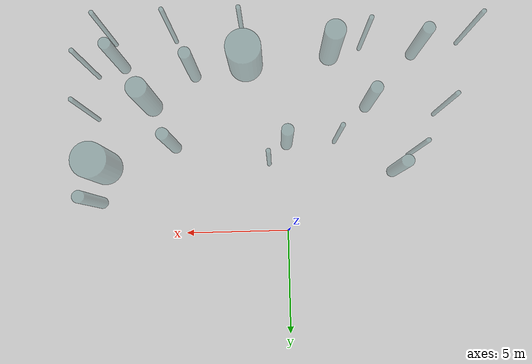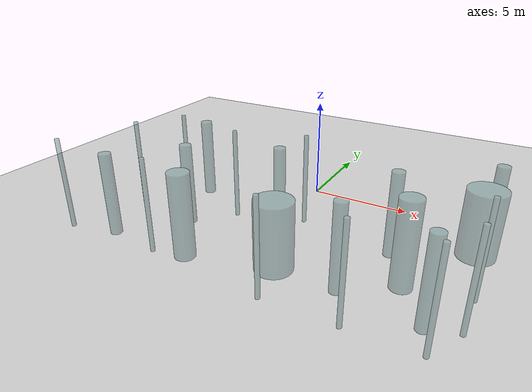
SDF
<sdf version="1.6">
 <world name="default">
  <model name="ground_plane">
   <static>1</static>
   <link name="link">
    <collision name="collision">
     <geometry><plane><normal>0 0 1</normal><size>100 100</size></plane></geometry>
     <surface><friction><ode><mu>100</mu><mu2>50</mu2></ode></friction></surface>
    </collision>
    <visual name="visual">
     <cast_shadows>0</cast_shadows>
     <geometry><plane><normal>0 0 1</normal><size>100 100</size></plane></geometry>
     <material>
      <script><uri>file://media/materials/scripts/gazebo.material</uri><name>Gazebo/Grey</name></script>
     </material>
    </visual>
   </link>
  </model>
  <model name="cylinders">
   <link name="link_clone_10">
    <inertial>
     <mass>1</mass>
     <inertia><ixx>0.145833</ixx><ixy>0</ixy><ixz>0</ixz><iyy>0.145833</iyy><iyz>0</iyz><izz>0.125</izz></inertia>
    </inertial>
    <pose>6.10285 -3.45416 1e-06 -0 -0 -0.001272</pose>
    <visual name="visual">
     <geometry><cylinder><radius>0.280725</radius><length>4</length></cylinder></geometry>
     <material>
      <script><name>Gazebo/Grey</name><uri>file://media/materials/scripts/gazebo.material</uri></script>
      <ambient>0.1 0.1 0.9 0.6</ambient>
      <shader type="vertex"><normal_map>__default__</normal_map></shader>
      <diffuse>0.3 0.5 0.5 0.4</diffuse>
      <specular>0.01 0.01 0.01 1</specular>
      <emissive>0 0 0 1</emissive>
      <lighting>1</lighting>
     </material>
    </visual>
    <collision name="collision">
     <geometry><cylinder><radius>0.280725</radius><length>4</length></cylinder></geometry>
     <surface>
      <friction>
       <ode><mu>1</mu><mu2>1</mu2><fdir1>0 0 0</fdir1><slip1>0</slip1><slip2>0</slip2></ode>
       <torsional>
        <coefficient>1</coefficient>
        <patch_radius>0</patch_radius>
        <surface_radius>0</surface_radius>
        <use_patch_radius>1</use_patch_radius>
        <ode><slip>0</slip></ode>
       </torsional>
      </friction>
      <bounce><restitution_coefficient>0</restitution_coefficient><threshold>1e+06</threshold></bounce>
      <contact>
       <collide_without_contact>0</collide_without_contact>
       <collide_without_contact_bitmask>1</collide_without_contact_bitmask>
       <collide_bitmask>1</collide_bitmask>
       <ode>
        <soft_cfm>0</soft_cfm>
        <soft_erp>0.2</soft_erp>
        <kp>1e+13</kp>
        <kd>1</kd>
        <max_vel>0.01</max_vel>
        <min_depth>0</min_depth>
       </ode>
       <bullet>
        <split_impulse>1</split_impulse>
        <split_impulse_penetration_threshold>-0.01</split_impulse_penetration_threshold>
        <soft_cfm>0</soft_cfm>
        <soft_erp>0.2</soft_erp>
        <kp>1e+13</kp>
        <kd>1</kd>
       </bullet>
      </contact>
     </surface>
    </collision>
   </link>
   <link name="link_clone_11">
    <inertial>
     <mass>1</mass>
     <inertia><ixx>0.145833</ixx><ixy>0</ixy><ixz>0</ixz><iyy>0.145833</iyy><iyz>0</iyz><izz>0.125</izz></inertia>
    </inertial>
    <pose>8.62363 -7.57073 2e-06 -0 -0 -0.001272</pose>
    <visual name="visual">
     <geometry><cylinder><radius>0.280725</radius><length>4</length></cylinder></geometry>
     <material>
      <script><name>Gazebo/Grey</name><uri>file://media/materials/scripts/gazebo.material</uri></script>
      <ambient>0.1 0.1 0.9 0.6</ambient>
      <shader type="vertex"><normal_map>__default__</normal_map></shader>
      <diffuse>0.3 0.5 0.5 0.4</diffuse>
      <specular>0.01 0.01 0.01 1</specular>
      <emissive>0 0 0 1</emissive>
      <lighting>1</lighting>
     </material>
    </visual>
    <collision name="collision">
     <geometry><cylinder><radius>0.280725</radius><length>4</length></cylinder></geometry>
     <surface>
      <friction>
       <ode><mu>1</mu><mu2>1</mu2><fdir1>0 0 0</fdir1><slip1>0</slip1><slip2>0</slip2></ode>
       <torsional>
        <coefficient>1</coefficient>
        <patch_radius>0</patch_radius>
        <surface_radius>0</surface_radius>
        <use_patch_radius>1</use_patch_radius>
        <ode><slip>0</slip></ode>
       </torsional>
      </friction>
      <bounce><restitution_coefficient>0</restitution_coefficient><threshold>1e+06</threshold></bounce>
      <contact>
       <collide_without_contact>0</collide_without_contact>
       <collide_without_contact_bitmask>1</collide_without_contact_bitmask>
       <collide_bitmask>1</collide_bitmask>
       <ode>
        <soft_cfm>0</soft_cfm>
        <soft_erp>0.2</soft_erp>
        <kp>1e+13</kp>
        <kd>1</kd>
        <max_vel>0.01</max_vel>
        <min_depth>0</min_depth>
       </ode>
       <bullet>
        <split_impulse>1</split_impulse>
        <split_impulse_penetration_threshold>-0.01</split_impulse_penetration_threshold>
        <soft_cfm>0</soft_cfm>
        <soft_erp>0.2</soft_erp>
        <kp>1e+13</kp>
        <kd>1</kd>
       </bullet>
      </contact>
     </surface>
    </collision>
   </link>
   <link name="link_clone_11_clone">
    <inertial>
     <mass>1</mass>
     <inertia><ixx>0.145833</ixx><ixy>0</ixy><ixz>0</ixz><iyy>0.145833</iyy><iyz>0</iyz><izz>0.125</izz></inertia>
    </inertial>
    <pose>-5.81358 -7.92747 1e-06 -0 -0 -0.002544</pose>
    <visual name="visual">
     <geometry><cylinder><radius>0.280725</radius><length>4</length></cylinder></geometry>
     <material>
      <script><name>Gazebo/Grey</name><uri>file://media/materials/scripts/gazebo.material</uri></script>
      <ambient>0.1 0.1 0.9 0.6</ambient>
      <shader type="vertex"><normal_map>__default__</normal_map></shader>
      <diffuse>0.3 0.5 0.5 0.4</diffuse>
      <specular>0.01 0.01 0.01 1</specular>
      <emissive>0 0 0 1</emissive>
      <lighting>1</lighting>
     </material>
    </visual>
    <collision name="collision">
     <geometry><cylinder><radius>0.280725</radius><length>4</length></cylinder></geometry>
     <surface>
      <friction>
       <ode><mu>1</mu><mu2>1</mu2><fdir1>0 0 0</fdir1><slip1>0</slip1><slip2>0</slip2></ode>
       <torsional>
        <coefficient>1</coefficient>
        <patch_radius>0</patch_radius>
        <surface_radius>0</surface_radius>
        <use_patch_radius>1</use_patch_radius>
        <ode><slip>0</slip></ode>
       </torsional>
      </friction>
      <bounce><restitution_coefficient>0</restitution_coefficient><threshold>1e+06</threshold></bounce>
      <contact>
       <collide_without_contact>0</collide_without_contact>
       <collide_without_contact_bitmask>1</collide_without_contact_bitmask>
       <collide_bitmask>1</collide_bitmask>
       <ode>
        <soft_cfm>0</soft_cfm>
        <soft_erp>0.2</soft_erp>
        <kp>1e+13</kp>
        <kd>1</kd>
        <max_vel>0.01</max_vel>
        <min_depth>0</min_depth>
       </ode>
       <bullet>
        <split_impulse>1</split_impulse>
        <split_impulse_penetration_threshold>-0.01</split_impulse_penetration_threshold>
        <soft_cfm>0</soft_cfm>
        <soft_erp>0.2</soft_erp>
        <kp>1e+13</kp>
        <kd>1</kd>
       </bullet>
      </contact>
     </surface>
    </collision>
   </link>
   <link name="link_clone_11_clone_0">
    <inertial>
     <mass>2.96402</mass>
     <inertia><ixx>4.12512</ixx><ixy>0</ixy><ixz>0</ixz><iyy>4.12512</iyy><iyz>0</iyz><izz>0.346176</izz></inertia>
    </inertial>
    <pose>-1.65639 -7.9506 2e-06 -0 -0 -0.002544</pose>
    <visual name="visual">
     <geometry><cylinder><radius>0.483307</radius><length>4</length></cylinder></geometry>
     <material>
      <script><name>Gazebo/Grey</name><uri>file://media/materials/scripts/gazebo.material</uri></script>
      <ambient>0.1 0.1 0.9 0.6</ambient>
      <shader type="vertex"><normal_map>__default__</normal_map></shader>
      <diffuse>0.3 0.5 0.5 0.4</diffuse>
      <specular>0.01 0.01 0.01 1</specular>
      <emissive>0 0 0 1</emissive>
      <lighting>1</lighting>
     </material>
    </visual>
    <collision name="collision">
     <geometry><cylinder><radius>0.483307</radius><length>4</length></cylinder></geometry>
     <surface>
      <friction>
       <ode><mu>1</mu><mu2>1</mu2><fdir1>0 0 0</fdir1><slip1>0</slip1><slip2>0</slip2></ode>
       <torsional>
        <coefficient>1</coefficient>
        <patch_radius>0</patch_radius>
        <surface_radius>0</surface_radius>
        <use_patch_radius>1</use_patch_radius>
        <ode><slip>0</slip></ode>
       </torsional>
      </friction>
      <bounce><restitution_coefficient>0</restitution_coefficient><threshold>1e+06</threshold></bounce>
      <contact>
       <collide_without_contact>0</collide_without_contact>
       <collide_without_contact_bitmask>1</collide_without_contact_bitmask>
       <collide_bitmask>1</collide_bitmask>
       <ode>
        <soft_cfm>0</soft_cfm>
        <soft_erp>0.2</soft_erp>
        <kp>1e+13</kp>
        <kd>1</kd>
        <max_vel>0.01</max_vel>
        <min_depth>0</min_depth>
       </ode>
       <bullet>
        <split_impulse>1</split_impulse>
        <split_impulse_penetration_threshold>-0.01</split_impulse_penetration_threshold>
        <soft_cfm>0</soft_cfm>
        <soft_erp>0.2</soft_erp>
        <kp>1e+13</kp>
        <kd>1</kd>
       </bullet>
      </contact>
     </surface>
    </collision>
   </link>
   <link name="link_clone_11_clone_0_clone_2">
    <inertial>
     <mass>2.96402</mass>
     <inertia><ixx>4.12512</ixx><ixy>0</ixy><ixz>0</ixz><iyy>4.12512</iyy><iyz>0</iyz><izz>0.346176</izz></inertia>
    </inertial>
    <pose>7.2329 -5.55542 3e-06 -0 -0 -0.003816</pose>
    <visual name="visual">
     <geometry><cylinder><radius>0.483307</radius><length>4</length></cylinder></geometry>
     <material>
      <script><name>Gazebo/Grey</name><uri>file://media/materials/scripts/gazebo.material</uri></script>
      <ambient>0.1 0.1 0.9 0.6</ambient>
      <shader type="vertex"><normal_map>__default__</normal_map></shader>
      <diffuse>0.3 0.5 0.5 0.4</diffuse>
      <specular>0.01 0.01 0.01 1</specular>
      <emissive>0 0 0 1</emissive>
      <lighting>1</lighting>
     </material>
    </visual>
    <collision name="collision">
     <geometry><cylinder><radius>0.483307</radius><length>4</length></cylinder></geometry>
     <surface>
      <friction>
       <ode><mu>1</mu><mu2>1</mu2><fdir1>0 0 0</fdir1><slip1>0</slip1><slip2>0</slip2></ode>
       <torsional>
        <coefficient>1</coefficient>
        <patch_radius>0</patch_radius>
        <surface_radius>0</surface_radius>
        <use_patch_radius>1</use_patch_radius>
        <ode><slip>0</slip></ode>
       </torsional>
      </friction>
      <bounce><restitution_coefficient>0</restitution_coefficient><threshold>1e+06</threshold></bounce>
      <contact>
       <collide_without_contact>0</collide_without_contact>
       <collide_without_contact_bitmask>1</collide_without_contact_bitmask>
       <collide_bitmask>1</collide_bitmask>
       <ode>
        <soft_cfm>0</soft_cfm>
        <soft_erp>0.2</soft_erp>
        <kp>1e+13</kp>
        <kd>1</kd>
        <max_vel>0.01</max_vel>
        <min_depth>0</min_depth>
       </ode>
       <bullet>
        <split_impulse>1</split_impulse>
        <split_impulse_penetration_threshold>-0.01</split_impulse_penetration_threshold>
        <soft_cfm>0</soft_cfm>
        <soft_erp>0.2</soft_erp>
        <kp>1e+13</kp>
        <kd>1</kd>
       </bullet>
      </contact>
     </surface>
    </collision>
   </link>
   <link name="link_clone_11_clone_1">
    <inertial>
     <mass>1</mass>
     <inertia><ixx>0.145833</ixx><ixy>0</ixy><ixz>0</ixz><iyy>0.145833</iyy><iyz>0</iyz><izz>0.125</izz></inertia>
    </inertial>
    <pose>5.08484 -7.05522 3e-06 -0 -0 -0.002544</pose>
    <visual name="visual">
     <geometry><cylinder><radius>0.280725</radius><length>4</length></cylinder></geometry>
     <material>
      <script><name>Gazebo/Grey</name><uri>file://media/materials/scripts/gazebo.material</uri></script>
      <ambient>0.1 0.1 0.9 0.6</ambient>
      <shader type="vertex"><normal_map>__default__</normal_map></shader>
      <diffuse>0.3 0.5 0.5 0.4</diffuse>
      <specular>0.01 0.01 0.01 1</specular>
      <emissive>0 0 0 1</emissive>
      <lighting>1</lighting>
     </material>
    </visual>
    <collision name="collision">
     <geometry><cylinder><radius>0.280725</radius><length>4</length></cylinder></geometry>
     <surface>
      <friction>
       <ode><mu>1</mu><mu2>1</mu2><fdir1>0 0 0</fdir1><slip1>0</slip1><slip2>0</slip2></ode>
       <torsional>
        <coefficient>1</coefficient>
        <patch_radius>0</patch_radius>
        <surface_radius>0</surface_radius>
        <use_patch_radius>1</use_patch_radius>
        <ode><slip>0</slip></ode>
       </torsional>
      </friction>
      <bounce><restitution_coefficient>0</restitution_coefficient><threshold>1e+06</threshold></bounce>
      <contact>
       <collide_without_contact>0</collide_without_contact>
       <collide_without_contact_bitmask>1</collide_without_contact_bitmask>
       <collide_bitmask>1</collide_bitmask>
       <ode>
        <soft_cfm>0</soft_cfm>
        <soft_erp>0.2</soft_erp>
        <kp>1e+13</kp>
        <kd>1</kd>
        <max_vel>0.01</max_vel>
        <min_depth>0</min_depth>
       </ode>
       <bullet>
        <split_impulse>1</split_impulse>
        <split_impulse_penetration_threshold>-0.01</split_impulse_penetration_threshold>
        <soft_cfm>0</soft_cfm>
        <soft_erp>0.2</soft_erp>
        <kp>1e+13</kp>
        <kd>1</kd>
       </bullet>
      </contact>
     </surface>
    </collision>
   </link>
   <link name="link_clone_11_clone_1_clone_0">
    <inertial>
     <mass>0.168862</mass>
     <inertia>
      <ixx>0.33323</ixx>
      <ixy>0</ixy>
      <ixz>0</ixz>
      <iyy>0.33323</iyy>
      <iyz>0</iyz>
      <izz>0.000924096</izz>
     </inertia>
    </inertial>
    <pose>9.95161 -4.98191 5e-06 -0 -0 -0.003816</pose>
    <visual name="visual">
     <geometry><cylinder><radius>0.104618</radius><length>4.8629</length></cylinder></geometry>
     <material>
      <script><name>Gazebo/Grey</name><uri>file://media/materials/scripts/gazebo.material</uri></script>
      <ambient>0.1 0.1 0.9 0.6</ambient>
      <shader type="vertex"><normal_map>__default__</normal_map></shader>
      <diffuse>0.3 0.5 0.5 0.4</diffuse>
      <specular>0.01 0.01 0.01 1</specular>
      <emissive>0 0 0 1</emissive>
      <lighting>1</lighting>
     </material>
    </visual>
    <collision name="collision">
     <geometry><cylinder><radius>0.104618</radius><length>4.8629</length></cylinder></geometry>
     <surface>
      <friction>
       <ode><mu>1</mu><mu2>1</mu2><fdir1>0 0 0</fdir1><slip1>0</slip1><slip2>0</slip2></ode>
       <torsional>
        <coefficient>1</coefficient>
        <patch_radius>0</patch_radius>
        <surface_radius>0</surface_radius>
        <use_patch_radius>1</use_patch_radius>
        <ode><slip>0</slip></ode>
       </torsional>
      </friction>
      <bounce><restitution_coefficient>0</restitution_coefficient><threshold>1e+06</threshold></bounce>
      <contact>
       <collide_without_contact>0</collide_without_contact>
       <collide_without_contact_bitmask>1</collide_without_contact_bitmask>
       <collide_bitmask>1</collide_bitmask>
       <ode>
        <soft_cfm>0</soft_cfm>
        <soft_erp>0.2</soft_erp>
        <kp>1e+13</kp>
        <kd>1</kd>
        <max_vel>0.01</max_vel>
        <min_depth>0</min_depth>
       </ode>
       <bullet>
        <split_impulse>1</split_impulse>
        <split_impulse_penetration_threshold>-0.01</split_impulse_penetration_threshold>
        <soft_cfm>0</soft_cfm>
        <soft_erp>0.2</soft_erp>
        <kp>1e+13</kp>
        <kd>1</kd>
       </bullet>
      </contact>
     </surface>
    </collision>
   </link>
   <link name="link_clone_11_clone_1_clone_1">
    <inertial>
     <mass>0.168862</mass>
     <inertia>
      <ixx>0.33323</ixx>
      <ixy>0</ixy>
      <ixz>0</ixz>
      <iyy>0.33323</iyy>
      <iyz>0</iyz>
      <izz>0.000924096</izz>
     </inertia>
    </inertial>
    <pose>1.46769 -2.52946 3e-06 -0 -0 -0.003816</pose>
    <visual name="visual">
     <geometry><cylinder><radius>0.104618</radius><length>4.8629</length></cylinder></geometry>
     <material>
      <script><name>Gazebo/Grey</name><uri>file://media/materials/scripts/gazebo.material</uri></script>
      <ambient>0.1 0.1 0.9 0.6</ambient>
      <shader type="vertex"><normal_map>__default__</normal_map></shader>
      <diffuse>0.3 0.5 0.5 0.4</diffuse>
      <specular>0.01 0.01 0.01 1</specular>
      <emissive>0 0 0 1</emissive>
      <lighting>1</lighting>
     </material>
    </visual>
    <collision name="collision">
     <geometry><cylinder><radius>0.104618</radius><length>4.8629</length></cylinder></geometry>
     <surface>
      <friction>
       <ode><mu>1</mu><mu2>1</mu2><fdir1>0 0 0</fdir1><slip1>0</slip1><slip2>0</slip2></ode>
       <torsional>
        <coefficient>1</coefficient>
        <patch_radius>0</patch_radius>
        <surface_radius>0</surface_radius>
        <use_patch_radius>1</use_patch_radius>
        <ode><slip>0</slip></ode>
       </torsional>
      </friction>
      <bounce><restitution_coefficient>0</restitution_coefficient><threshold>1e+06</threshold></bounce>
      <contact>
       <collide_without_contact>0</collide_without_contact>
       <collide_without_contact_bitmask>1</collide_without_contact_bitmask>
       <collide_bitmask>1</collide_bitmask>
       <ode>
        <soft_cfm>0</soft_cfm>
        <soft_erp>0.2</soft_erp>
        <kp>1e+13</kp>
        <kd>1</kd>
        <max_vel>0.01</max_vel>
        <min_depth>0</min_depth>
       </ode>
       <bullet>
        <split_impulse>1</split_impulse>
        <split_impulse_penetration_threshold>-0.01</split_impulse_penetration_threshold>
        <soft_cfm>0</soft_cfm>
        <soft_erp>0.2</soft_erp>
        <kp>1e+13</kp>
        <kd>1</kd>
       </bullet>
      </contact>
     </surface>
    </collision>
   </link>
   <link name="link_clone_11_clone_1_clone_10">
    <inertial>
     <mass>0.168862</mass>
     <inertia>
      <ixx>0.33323</ixx>
      <ixy>0</ixy>
      <ixz>0</ixz>
      <iyy>0.33323</iyy>
      <iyz>0</iyz>
      <izz>0.000924096</izz>
     </inertia>
    </inertial>
    <pose>-1.79045 -3.5684 3e-06 -0 -0 -0.003816</pose>
    <visual name="visual">
     <geometry><cylinder><radius>0.104618</radius><length>4.8629</length></cylinder></geometry>
     <material>
      <script><name>Gazebo/Grey</name><uri>file://media/materials/scripts/gazebo.material</uri></script>
      <ambient>0.1 0.1 0.9 0.6</ambient>
      <shader type="vertex"><normal_map>__default__</normal_map></shader>
      <diffuse>0.3 0.5 0.5 0.4</diffuse>
      <specular>0.01 0.01 0.01 1</specular>
      <emissive>0 0 0 1</emissive>
      <lighting>1</lighting>
     </material>
    </visual>
    <collision name="collision">
     <geometry><cylinder><radius>0.104618</radius><length>4.8629</length></cylinder></geometry>
     <surface>
      <friction>
       <ode><mu>1</mu><mu2>1</mu2><fdir1>0 0 0</fdir1><slip1>0</slip1><slip2>0</slip2></ode>
       <torsional>
        <coefficient>1</coefficient>
        <patch_radius>0</patch_radius>
        <surface_radius>0</surface_radius>
        <use_patch_radius>1</use_patch_radius>
        <ode><slip>0</slip></ode>
       </torsional>
      </friction>
      <bounce><restitution_coefficient>0</restitution_coefficient><threshold>1e+06</threshold></bounce>
      <contact>
       <collide_without_contact>0</collide_without_contact>
       <collide_without_contact_bitmask>1</collide_without_contact_bitmask>
       <collide_bitmask>1</collide_bitmask>
       <ode>
        <soft_cfm>0</soft_cfm>
        <soft_erp>0.2</soft_erp>
        <kp>1e+13</kp>
        <kd>1</kd>
        <max_vel>0.01</max_vel>
        <min_depth>0</min_depth>
       </ode>
       <bullet>
        <split_impulse>1</split_impulse>
        <split_impulse_penetration_threshold>-0.01</split_impulse_penetration_threshold>
        <soft_cfm>0</soft_cfm>
        <soft_erp>0.2</soft_erp>
        <kp>1e+13</kp>
        <kd>1</kd>
       </bullet>
      </contact>
     </surface>
    </collision>
   </link>
   <link name="link_clone_11_clone_1_clone_4_clone">
    <inertial>
     <mass>0.168862</mass>
     <inertia>
      <ixx>0.33323</ixx>
      <ixy>0</ixy>
      <ixz>0</ixz>
      <iyy>0.33323</iyy>
      <iyz>0</iyz>
      <izz>0.000924096</izz>
     </inertia>
    </inertial>
    <pose>-8.13414 -8.46395 3e-06 -0 -0 -0.005088</pose>
    <visual name="visual">
     <geometry><cylinder><radius>0.104618</radius><length>4.8629</length></cylinder></geometry>
     <material>
      <script><name>Gazebo/Grey</name><uri>file://media/materials/scripts/gazebo.material</uri></script>
      <ambient>0.1 0.1 0.9 0.6</ambient>
      <shader type="vertex"><normal_map>__default__</normal_map></shader>
      <diffuse>0.3 0.5 0.5 0.4</diffuse>
      <specular>0.01 0.01 0.01 1</specular>
      <emissive>0 0 0 1</emissive>
      <lighting>1</lighting>
     </material>
    </visual>
    <collision name="collision">
     <geometry><cylinder><radius>0.104618</radius><length>4.8629</length></cylinder></geometry>
     <surface>
      <friction>
       <ode><mu>1</mu><mu2>1</mu2><fdir1>0 0 0</fdir1><slip1>0</slip1><slip2>0</slip2></ode>
       <torsional>
        <coefficient>1</coefficient>
        <patch_radius>0</patch_radius>
        <surface_radius>0</surface_radius>
        <use_patch_radius>1</use_patch_radius>
        <ode><slip>0</slip></ode>
       </torsional>
      </friction>
      <bounce><restitution_coefficient>0</restitution_coefficient><threshold>1e+06</threshold></bounce>
      <contact>
       <collide_without_contact>0</collide_without_contact>
       <collide_without_contact_bitmask>1</collide_without_contact_bitmask>
       <collide_bitmask>1</collide_bitmask>
       <ode>
        <soft_cfm>0</soft_cfm>
        <soft_erp>0.2</soft_erp>
        <kp>1e+13</kp>
        <kd>1</kd>
        <max_vel>0.01</max_vel>
        <min_depth>0</min_depth>
       </ode>
       <bullet>
        <split_impulse>1</split_impulse>
        <split_impulse_penetration_threshold>-0.01</split_impulse_penetration_threshold>
        <soft_cfm>0</soft_cfm>
        <soft_erp>0.2</soft_erp>
        <kp>1e+13</kp>
        <kd>1</kd>
       </bullet>
      </contact>
     </surface>
    </collision>
   </link>
   <link name="link_clone_11_clone_1_clone_4_clone_0">
    <inertial>
     <mass>0.168862</mass>
     <inertia>
      <ixx>0.33323</ixx>
      <ixy>0</ixy>
      <ixz>0</ixz>
      <iyy>0.33323</iyy>
      <iyz>0</iyz>
      <izz>0.000924096</izz>
     </inertia>
    </inertial>
    <pose>-6.81628 -4.84472 3e-06 -0 -0 -0.005088</pose>
    <visual name="visual">
     <geometry><cylinder><radius>0.104618</radius><length>4.8629</length></cylinder></geometry>
     <material>
      <script><name>Gazebo/Grey</name><uri>file://media/materials/scripts/gazebo.material</uri></script>
      <ambient>0.1 0.1 0.9 0.6</ambient>
      <shader type="vertex"><normal_map>__default__</normal_map></shader>
      <diffuse>0.3 0.5 0.5 0.4</diffuse>
      <specular>0.01 0.01 0.01 1</specular>
      <emissive>0 0 0 1</emissive>
      <lighting>1</lighting>
     </material>
    </visual>
    <collision name="collision">
     <geometry><cylinder><radius>0.104618</radius><length>4.8629</length></cylinder></geometry>
     <surface>
      <friction>
       <ode><mu>1</mu><mu2>1</mu2><fdir1>0 0 0</fdir1><slip1>0</slip1><slip2>0</slip2></ode>
       <torsional>
        <coefficient>1</coefficient>
        <patch_radius>0</patch_radius>
        <surface_radius>0</surface_radius>
        <use_patch_radius>1</use_patch_radius>
        <ode><slip>0</slip></ode>
       </torsional>
      </friction>
      <bounce><restitution_coefficient>0</restitution_coefficient><threshold>1e+06</threshold></bounce>
      <contact>
       <collide_without_contact>0</collide_without_contact>
       <collide_without_contact_bitmask>1</collide_without_contact_bitmask>
       <collide_bitmask>1</collide_bitmask>
       <ode>
        <soft_cfm>0</soft_cfm>
        <soft_erp>0.2</soft_erp>
        <kp>1e+13</kp>
        <kd>1</kd>
        <max_vel>0.01</max_vel>
        <min_depth>0</min_depth>
       </ode>
       <bullet>
        <split_impulse>1</split_impulse>
        <split_impulse_penetration_threshold>-0.01</split_impulse_penetration_threshold>
        <soft_cfm>0</soft_cfm>
        <soft_erp>0.2</soft_erp>
        <kp>1e+13</kp>
        <kd>1</kd>
       </bullet>
      </contact>
     </surface>
    </collision>
   </link>
   <link name="link_clone_11_clone_1_clone_4_clone_4">
    <inertial>
     <mass>0.168862</mass>
     <inertia>
      <ixx>0.33323</ixx>
      <ixy>0</ixy>
      <ixz>0</ixz>
      <iyy>0.33323</iyy>
      <iyz>0</iyz>
      <izz>0.000924096</izz>
     </inertia>
    </inertial>
    <pose>9.93603 -7.14753 6e-06 -0 -0 -0.005088</pose>
    <visual name="visual">
     <geometry><cylinder><radius>0.104618</radius><length>4.8629</length></cylinder></geometry>
     <material>
      <script><name>Gazebo/Grey</name><uri>file://media/materials/scripts/gazebo.material</uri></script>
      <ambient>0.1 0.1 0.9 0.6</ambient>
      <shader type="vertex"><normal_map>__default__</normal_map></shader>
      <diffuse>0.3 0.5 0.5 0.4</diffuse>
      <specular>0.01 0.01 0.01 1</specular>
      <emissive>0 0 0 1</emissive>
      <lighting>1</lighting>
     </material>
    </visual>
    <collision name="collision">
     <geometry><cylinder><radius>0.104618</radius><length>4.8629</length></cylinder></geometry>
     <surface>
      <friction>
       <ode><mu>1</mu><mu2>1</mu2><fdir1>0 0 0</fdir1><slip1>0</slip1><slip2>0</slip2></ode>
       <torsional>
        <coefficient>1</coefficient>
        <patch_radius>0</patch_radius>
        <surface_radius>0</surface_radius>
        <use_patch_radius>1</use_patch_radius>
        <ode><slip>0</slip></ode>
       </torsional>
      </friction>
      <bounce><restitution_coefficient>0</restitution_coefficient><threshold>1e+06</threshold></bounce>
      <contact>
       <collide_without_contact>0</collide_without_contact>
       <collide_without_contact_bitmask>1</collide_without_contact_bitmask>
       <collide_bitmask>1</collide_bitmask>
       <ode>
        <soft_cfm>0</soft_cfm>
        <soft_erp>0.2</soft_erp>
        <kp>1e+13</kp>
        <kd>1</kd>
        <max_vel>0.01</max_vel>
        <min_depth>0</min_depth>
       </ode>
       <bullet>
        <split_impulse>1</split_impulse>
        <split_impulse_penetration_threshold>-0.01</split_impulse_penetration_threshold>
        <soft_cfm>0</soft_cfm>
        <soft_erp>0.2</soft_erp>
        <kp>1e+13</kp>
        <kd>1</kd>
       </bullet>
      </contact>
     </surface>
    </collision>
   </link>
   <link name="link_clone_11_clone_1_clone_4_clone_5">
    <inertial>
     <mass>0.168862</mass>
     <inertia>
      <ixx>0.33323</ixx>
      <ixy>0</ixy>
      <ixz>0</ixz>
      <iyy>0.33323</iyy>
      <iyz>0</iyz>
      <izz>0.000924096</izz>
     </inertia>
    </inertial>
    <pose>6.01829 -8.88985 5e-06 -0 -0 -0.005088</pose>
    <visual name="visual">
     <geometry><cylinder><radius>0.104618</radius><length>4.8629</length></cylinder></geometry>
     <material>
      <script><name>Gazebo/Grey</name><uri>file://media/materials/scripts/gazebo.material</uri></script>
      <ambient>0.1 0.1 0.9 0.6</ambient>
      <shader type="vertex"><normal_map>__default__</normal_map></shader>
      <diffuse>0.3 0.5 0.5 0.4</diffuse>
      <specular>0.01 0.01 0.01 1</specular>
      <emissive>0 0 0 1</emissive>
      <lighting>1</lighting>
     </material>
    </visual>
    <collision name="collision">
     <geometry><cylinder><radius>0.104618</radius><length>4.8629</length></cylinder></geometry>
     <surface>
      <friction>
       <ode><mu>1</mu><mu2>1</mu2><fdir1>0 0 0</fdir1><slip1>0</slip1><slip2>0</slip2></ode>
       <torsional>
        <coefficient>1</coefficient>
        <patch_radius>0</patch_radius>
        <surface_radius>0</surface_radius>
        <use_patch_radius>1</use_patch_radius>
        <ode><slip>0</slip></ode>
       </torsional>
      </friction>
      <bounce><restitution_coefficient>0</restitution_coefficient><threshold>1e+06</threshold></bounce>
      <contact>
       <collide_without_contact>0</collide_without_contact>
       <collide_without_contact_bitmask>1</collide_without_contact_bitmask>
       <collide_bitmask>1</collide_bitmask>
       <ode>
        <soft_cfm>0</soft_cfm>
        <soft_erp>0.2</soft_erp>
        <kp>1e+13</kp>
        <kd>1</kd>
        <max_vel>0.01</max_vel>
        <min_depth>0</min_depth>
       </ode>
       <bullet>
        <split_impulse>1</split_impulse>
        <split_impulse_penetration_threshold>-0.01</split_impulse_penetration_threshold>
        <soft_cfm>0</soft_cfm>
        <soft_erp>0.2</soft_erp>
        <kp>1e+13</kp>
        <kd>1</kd>
       </bullet>
      </contact>
     </surface>
    </collision>
   </link>
   <link name="link_clone_11_clone_1_clone_4_clone_6">
    <inertial>
     <mass>0.168862</mass>
     <inertia>
      <ixx>0.33323</ixx>
      <ixy>0</ixy>
      <ixz>0</ixz>
      <iyy>0.33323</iyy>
      <iyz>0</iyz>
      <izz>0.000924096</izz>
     </inertia>
    </inertial>
    <pose>-3.20257 -8.31243 4e-06 -0 -0 -0.005088</pose>
    <visual name="visual">
     <geometry><cylinder><radius>0.104618</radius><length>4.8629</length></cylinder></geometry>
     <material>
      <script><name>Gazebo/Grey</name><uri>file://media/materials/scripts/gazebo.material</uri></script>
      <ambient>0.1 0.1 0.9 0.6</ambient>
      <shader type="vertex"><normal_map>__default__</normal_map></shader>
      <diffuse>0.3 0.5 0.5 0.4</diffuse>
      <specular>0.01 0.01 0.01 1</specular>
      <emissive>0 0 0 1</emissive>
      <lighting>1</lighting>
     </material>
    </visual>
    <collision name="collision">
     <geometry><cylinder><radius>0.104618</radius><length>4.8629</length></cylinder></geometry>
     <surface>
      <friction>
       <ode><mu>1</mu><mu2>1</mu2><fdir1>0 0 0</fdir1><slip1>0</slip1><slip2>0</slip2></ode>
       <torsional>
        <coefficient>1</coefficient>
        <patch_radius>0</patch_radius>
        <surface_radius>0</surface_radius>
        <use_patch_radius>1</use_patch_radius>
        <ode><slip>0</slip></ode>
       </torsional>
      </friction>
      <bounce><restitution_coefficient>0</restitution_coefficient><threshold>1e+06</threshold></bounce>
      <contact>
       <collide_without_contact>0</collide_without_contact>
       <collide_without_contact_bitmask>1</collide_without_contact_bitmask>
       <collide_bitmask>1</collide_bitmask>
       <ode>
        <soft_cfm>0</soft_cfm>
        <soft_erp>0.2</soft_erp>
        <kp>1e+13</kp>
        <kd>1</kd>
        <max_vel>0.01</max_vel>
        <min_depth>0</min_depth>
       </ode>
       <bullet>
        <split_impulse>1</split_impulse>
        <split_impulse_penetration_threshold>-0.01</split_impulse_penetration_threshold>
        <soft_cfm>0</soft_cfm>
        <soft_erp>0.2</soft_erp>
        <kp>1e+13</kp>
        <kd>1</kd>
       </bullet>
      </contact>
     </surface>
    </collision>
   </link>
   <link name="link_clone_11_clone_1_clone_6">
    <inertial>
     <mass>0.168862</mass>
     <inertia>
      <ixx>0.33323</ixx>
      <ixy>0</ixy>
      <ixz>0</ixz>
      <iyy>0.33323</iyy>
      <iyz>0</iyz>
      <izz>0.000924096</izz>
     </inertia>
    </inertial>
    <pose>-5.44869 -2.81704 2e-06 -0 -0 -0.003816</pose>
    <visual name="visual">
     <geometry><cylinder><radius>0.104618</radius><length>4.8629</length></cylinder></geometry>
     <material>
      <script><name>Gazebo/Grey</name><uri>file://media/materials/scripts/gazebo.material</uri></script>
      <ambient>0.1 0.1 0.9 0.6</ambient>
      <shader type="vertex"><normal_map>__default__</normal_map></shader>
      <diffuse>0.3 0.5 0.5 0.4</diffuse>
      <specular>0.01 0.01 0.01 1</specular>
      <emissive>0 0 0 1</emissive>
      <lighting>1</lighting>
     </material>
    </visual>
    <collision name="collision">
     <geometry><cylinder><radius>0.104618</radius><length>4.8629</length></cylinder></geometry>
     <surface>
      <friction>
       <ode><mu>1</mu><mu2>1</mu2><fdir1>0 0 0</fdir1><slip1>0</slip1><slip2>0</slip2></ode>
       <torsional>
        <coefficient>1</coefficient>
        <patch_radius>0</patch_radius>
        <surface_radius>0</surface_radius>
        <use_patch_radius>1</use_patch_radius>
        <ode><slip>0</slip></ode>
       </torsional>
      </friction>
      <bounce><restitution_coefficient>0</restitution_coefficient><threshold>1e+06</threshold></bounce>
      <contact>
       <collide_without_contact>0</collide_without_contact>
       <collide_without_contact_bitmask>1</collide_without_contact_bitmask>
       <collide_bitmask>1</collide_bitmask>
       <ode>
        <soft_cfm>0</soft_cfm>
        <soft_erp>0.2</soft_erp>
        <kp>1e+13</kp>
        <kd>1</kd>
        <max_vel>0.01</max_vel>
        <min_depth>0</min_depth>
       </ode>
       <bullet>
        <split_impulse>1</split_impulse>
        <split_impulse_penetration_threshold>-0.01</split_impulse_penetration_threshold>
        <soft_cfm>0</soft_cfm>
        <soft_erp>0.2</soft_erp>
        <kp>1e+13</kp>
        <kd>1</kd>
       </bullet>
      </contact>
     </surface>
    </collision>
   </link>
   <link name="link_clone_11_clone_1_clone_7">
    <inertial>
     <mass>0.168862</mass>
     <inertia>
      <ixx>0.33323</ixx>
      <ixy>0</ixy>
      <ixz>0</ixz>
      <iyy>0.33323</iyy>
      <iyz>0</iyz>
      <izz>0.000924096</izz>
     </inertia>
    </inertial>
    <pose>2.63882 -8.9064 4e-06 -0 -0 -0.003816</pose>
    <visual name="visual">
     <geometry><cylinder><radius>0.104618</radius><length>4.8629</length></cylinder></geometry>
     <material>
      <script><name>Gazebo/Grey</name><uri>file://media/materials/scripts/gazebo.material</uri></script>
      <ambient>0.1 0.1 0.9 0.6</ambient>
      <shader type="vertex"><normal_map>__default__</normal_map></shader>
      <diffuse>0.3 0.5 0.5 0.4</diffuse>
      <specular>0.01 0.01 0.01 1</specular>
      <emissive>0 0 0 1</emissive>
      <lighting>1</lighting>
     </material>
    </visual>
    <collision name="collision">
     <geometry><cylinder><radius>0.104618</radius><length>4.8629</length></cylinder></geometry>
     <surface>
      <friction>
       <ode><mu>1</mu><mu2>1</mu2><fdir1>0 0 0</fdir1><slip1>0</slip1><slip2>0</slip2></ode>
       <torsional>
        <coefficient>1</coefficient>
        <patch_radius>0</patch_radius>
        <surface_radius>0</surface_radius>
        <use_patch_radius>1</use_patch_radius>
        <ode><slip>0</slip></ode>
       </torsional>
      </friction>
      <bounce><restitution_coefficient>0</restitution_coefficient><threshold>1e+06</threshold></bounce>
      <contact>
       <collide_without_contact>0</collide_without_contact>
       <collide_without_contact_bitmask>1</collide_without_contact_bitmask>
       <collide_bitmask>1</collide_bitmask>
       <ode>
        <soft_cfm>0</soft_cfm>
        <soft_erp>0.2</soft_erp>
        <kp>1e+13</kp>
        <kd>1</kd>
        <max_vel>0.01</max_vel>
        <min_depth>0</min_depth>
       </ode>
       <bullet>
        <split_impulse>1</split_impulse>
        <split_impulse_penetration_threshold>-0.01</split_impulse_penetration_threshold>
        <soft_cfm>0</soft_cfm>
        <soft_erp>0.2</soft_erp>
        <kp>1e+13</kp>
        <kd>1</kd>
       </bullet>
      </contact>
     </surface>
    </collision>
   </link>
   <link name="link_clone_11_clone_1_clone_9">
    <inertial>
     <mass>0.168862</mass>
     <inertia>
      <ixx>0.33323</ixx>
      <ixy>0</ixy>
      <ixz>0</ixz>
      <iyy>0.33323</iyy>
      <iyz>0</iyz>
      <izz>0.000924096</izz>
     </inertia>
    </inertial>
    <pose>9.07951 -8.8192 5e-06 -0 -0 -0.003816</pose>
    <visual name="visual">
     <geometry><cylinder><radius>0.104618</radius><length>4.8629</length></cylinder></geometry>
     <material>
      <script><name>Gazebo/Grey</name><uri>file://media/materials/scripts/gazebo.material</uri></script>
      <ambient>0.1 0.1 0.9 0.6</ambient>
      <shader type="vertex"><normal_map>__default__</normal_map></shader>
      <diffuse>0.3 0.5 0.5 0.4</diffuse>
      <specular>0.01 0.01 0.01 1</specular>
      <emissive>0 0 0 1</emissive>
      <lighting>1</lighting>
     </material>
    </visual>
    <collision name="collision">
     <geometry><cylinder><radius>0.104618</radius><length>4.8629</length></cylinder></geometry>
     <surface>
      <friction>
       <ode><mu>1</mu><mu2>1</mu2><fdir1>0 0 0</fdir1><slip1>0</slip1><slip2>0</slip2></ode>
       <torsional>
        <coefficient>1</coefficient>
        <patch_radius>0</patch_radius>
        <surface_radius>0</surface_radius>
        <use_patch_radius>1</use_patch_radius>
        <ode><slip>0</slip></ode>
       </torsional>
      </friction>
      <bounce><restitution_coefficient>0</restitution_coefficient><threshold>1e+06</threshold></bounce>
      <contact>
       <collide_without_contact>0</collide_without_contact>
       <collide_without_contact_bitmask>1</collide_without_contact_bitmask>
       <collide_bitmask>1</collide_bitmask>
       <ode>
        <soft_cfm>0</soft_cfm>
        <soft_erp>0.2</soft_erp>
        <kp>1e+13</kp>
        <kd>1</kd>
        <max_vel>0.01</max_vel>
        <min_depth>0</min_depth>
       </ode>
       <bullet>
        <split_impulse>1</split_impulse>
        <split_impulse_penetration_threshold>-0.01</split_impulse_penetration_threshold>
        <soft_cfm>0</soft_cfm>
        <soft_erp>0.2</soft_erp>
        <kp>1e+13</kp>
        <kd>1</kd>
       </bullet>
      </contact>
     </surface>
    </collision>
   </link>
   <link name="link_clone_11_clone_2">
    <inertial>
     <mass>1</mass>
     <inertia><ixx>0.145833</ixx><ixy>0</ixy><ixz>0</ixz><iyy>0.145833</iyy><iyz>0</iyz><izz>0.125</izz></inertia>
    </inertial>
    <pose>9.75927 -0.788198 4e-06 -0 -0 -0.002544</pose>
    <visual name="visual">
     <geometry><cylinder><radius>0.280725</radius><length>4</length></cylinder></geometry>
     <material>
      <script><name>Gazebo/Grey</name><uri>file://media/materials/scripts/gazebo.material</uri></script>
      <ambient>0.1 0.1 0.9 0.6</ambient>
      <shader type="vertex"><normal_map>__default__</normal_map></shader>
      <diffuse>0.3 0.5 0.5 0.4</diffuse>
      <specular>0.01 0.01 0.01 1</specular>
      <emissive>0 0 0 1</emissive>
      <lighting>1</lighting>
     </material>
    </visual>
    <collision name="collision">
     <geometry><cylinder><radius>0.280725</radius><length>4</length></cylinder></geometry>
     <surface>
      <friction>
       <ode><mu>1</mu><mu2>1</mu2><fdir1>0 0 0</fdir1><slip1>0</slip1><slip2>0</slip2></ode>
       <torsional>
        <coefficient>1</coefficient>
        <patch_radius>0</patch_radius>
        <surface_radius>0</surface_radius>
        <use_patch_radius>1</use_patch_radius>
        <ode><slip>0</slip></ode>
       </torsional>
      </friction>
      <bounce><restitution_coefficient>0</restitution_coefficient><threshold>1e+06</threshold></bounce>
      <contact>
       <collide_without_contact>0</collide_without_contact>
       <collide_without_contact_bitmask>1</collide_without_contact_bitmask>
       <collide_bitmask>1</collide_bitmask>
       <ode>
        <soft_cfm>0</soft_cfm>
        <soft_erp>0.2</soft_erp>
        <kp>1e+13</kp>
        <kd>1</kd>
        <max_vel>0.01</max_vel>
        <min_depth>0</min_depth>
       </ode>
       <bullet>
        <split_impulse>1</split_impulse>
        <split_impulse_penetration_threshold>-0.01</split_impulse_penetration_threshold>
        <soft_cfm>0</soft_cfm>
        <soft_erp>0.2</soft_erp>
        <kp>1e+13</kp>
        <kd>1</kd>
       </bullet>
      </contact>
     </surface>
    </collision>
   </link>
   <link name="link_clone_2">
    <inertial>
     <mass>1</mass>
     <inertia><ixx>0.145833</ixx><ixy>0</ixy><ixz>0</ixz><iyy>0.145833</iyy><iyz>0</iyz><izz>0.125</izz></inertia>
    </inertial>
    <pose>-4.62576 -2.00694 -1e-06 -0 -0 -0.001272</pose>
    <visual name="visual">
     <geometry><cylinder><radius>0.280725</radius><length>4</length></cylinder></geometry>
     <material>
      <script><name>Gazebo/Grey</name><uri>file://media/materials/scripts/gazebo.material</uri></script>
      <ambient>0.1 0.1 0.9 0.6</ambient>
      <shader type="vertex"><normal_map>__default__</normal_map></shader>
      <diffuse>0.3 0.5 0.5 0.4</diffuse>
      <specular>0.01 0.01 0.01 1</specular>
      <emissive>0 0 0 1</emissive>
      <lighting>1</lighting>
     </material>
    </visual>
    <collision name="collision">
     <geometry><cylinder><radius>0.280725</radius><length>4</length></cylinder></geometry>
     <surface>
      <friction>
       <ode><mu>1</mu><mu2>1</mu2><fdir1>0 0 0</fdir1><slip1>0</slip1><slip2>0</slip2></ode>
       <torsional>
        <coefficient>1</coefficient>
        <patch_radius>0</patch_radius>
        <surface_radius>0</surface_radius>
        <use_patch_radius>1</use_patch_radius>
        <ode><slip>0</slip></ode>
       </torsional>
      </friction>
      <bounce><restitution_coefficient>0</restitution_coefficient><threshold>1e+06</threshold></bounce>
      <contact>
       <collide_without_contact>0</collide_without_contact>
       <collide_without_contact_bitmask>1</collide_without_contact_bitmask>
       <collide_bitmask>1</collide_bitmask>
       <ode>
        <soft_cfm>0</soft_cfm>
        <soft_erp>0.2</soft_erp>
        <kp>1e+13</kp>
        <kd>1</kd>
        <max_vel>0.01</max_vel>
        <min_depth>0</min_depth>
       </ode>
       <bullet>
        <split_impulse>1</split_impulse>
        <split_impulse_penetration_threshold>-0.01</split_impulse_penetration_threshold>
        <soft_cfm>0</soft_cfm>
        <soft_erp>0.2</soft_erp>
        <kp>1e+13</kp>
        <kd>1</kd>
       </bullet>
      </contact>
     </surface>
    </collision>
   </link>
   <link name="link_clone_3">
    <inertial>
     <mass>1</mass>
     <inertia><ixx>0.145833</ixx><ixy>0</ixy><ixz>0</ixz><iyy>0.145833</iyy><iyz>0</iyz><izz>0.125</izz></inertia>
    </inertial>
    <pose>-3.40119 -5.29574 -0 -0 -0 -0.001272</pose>
    <visual name="visual">
     <geometry><cylinder><radius>0.280725</radius><length>4</length></cylinder></geometry>
     <material>
      <script><name>Gazebo/Grey</name><uri>file://media/materials/scripts/gazebo.material</uri></script>
      <ambient>0.1 0.1 0.9 0.6</ambient>
      <shader type="vertex"><normal_map>__default__</normal_map></shader>
      <diffuse>0.3 0.5 0.5 0.4</diffuse>
      <specular>0.01 0.01 0.01 1</specular>
      <emissive>0 0 0 1</emissive>
      <lighting>1</lighting>
     </material>
    </visual>
    <collision name="collision">
     <geometry><cylinder><radius>0.280725</radius><length>4</length></cylinder></geometry>
     <surface>
      <friction>
       <ode><mu>1</mu><mu2>1</mu2><fdir1>0 0 0</fdir1><slip1>0</slip1><slip2>0</slip2></ode>
       <torsional>
        <coefficient>1</coefficient>
        <patch_radius>0</patch_radius>
        <surface_radius>0</surface_radius>
        <use_patch_radius>1</use_patch_radius>
        <ode><slip>0</slip></ode>
       </torsional>
      </friction>
      <bounce><restitution_coefficient>0</restitution_coefficient><threshold>1e+06</threshold></bounce>
      <contact>
       <collide_without_contact>0</collide_without_contact>
       <collide_without_contact_bitmask>1</collide_without_contact_bitmask>
       <collide_bitmask>1</collide_bitmask>
       <ode>
        <soft_cfm>0</soft_cfm>
        <soft_erp>0.2</soft_erp>
        <kp>1e+13</kp>
        <kd>1</kd>
        <max_vel>0.01</max_vel>
        <min_depth>0</min_depth>
       </ode>
       <bullet>
        <split_impulse>1</split_impulse>
        <split_impulse_penetration_threshold>-0.01</split_impulse_penetration_threshold>
        <soft_cfm>0</soft_cfm>
        <soft_erp>0.2</soft_erp>
        <kp>1e+13</kp>
        <kd>1</kd>
       </bullet>
      </contact>
     </surface>
    </collision>
   </link>
   <link name="link_clone_4">
    <inertial>
     <mass>1</mass>
     <inertia><ixx>0.145833</ixx><ixy>0</ixy><ixz>0</ixz><iyy>0.145833</iyy><iyz>0</iyz><izz>0.125</izz></inertia>
    </inertial>
    <pose>0.593371 -3.49389 0 -0 -0 -0.001272</pose>
    <visual name="visual">
     <geometry><cylinder><radius>0.280725</radius><length>4</length></cylinder></geometry>
     <material>
      <script><name>Gazebo/Grey</name><uri>file://media/materials/scripts/gazebo.material</uri></script>
      <ambient>0.1 0.1 0.9 0.6</ambient>
      <shader type="vertex"><normal_map>__default__</normal_map></shader>
      <diffuse>0.3 0.5 0.5 0.4</diffuse>
      <specular>0.01 0.01 0.01 1</specular>
      <emissive>0 0 0 1</emissive>
      <lighting>1</lighting>
     </material>
    </visual>
    <collision name="collision">
     <geometry><cylinder><radius>0.280725</radius><length>4</length></cylinder></geometry>
     <surface>
      <friction>
       <ode><mu>1</mu><mu2>1</mu2><fdir1>0 0 0</fdir1><slip1>0</slip1><slip2>0</slip2></ode>
       <torsional>
        <coefficient>1</coefficient>
        <patch_radius>0</patch_radius>
        <surface_radius>0</surface_radius>
        <use_patch_radius>1</use_patch_radius>
        <ode><slip>0</slip></ode>
       </torsional>
      </friction>
      <bounce><restitution_coefficient>0</restitution_coefficient><threshold>1e+06</threshold></bounce>
      <contact>
       <collide_without_contact>0</collide_without_contact>
       <collide_without_contact_bitmask>1</collide_without_contact_bitmask>
       <collide_bitmask>1</collide_bitmask>
       <ode>
        <soft_cfm>0</soft_cfm>
        <soft_erp>0.2</soft_erp>
        <kp>1e+13</kp>
        <kd>1</kd>
        <max_vel>0.01</max_vel>
        <min_depth>0</min_depth>
       </ode>
       <bullet>
        <split_impulse>1</split_impulse>
        <split_impulse_penetration_threshold>-0.01</split_impulse_penetration_threshold>
        <soft_cfm>0</soft_cfm>
        <soft_erp>0.2</soft_erp>
        <kp>1e+13</kp>
        <kd>1</kd>
       </bullet>
      </contact>
     </surface>
    </collision>
   </link>
   <link name="link_clone_5">
    <inertial>
     <mass>6.752</mass>
     <inertia><ixx>6.51683</ixx><ixy>0</ixy><ixz>0</ixz><iyy>6.51683</iyy><iyz>0</iyz><izz>2.32983</izz></inertia>
    </inertial>
    <pose>2.51482 -7.43919 1e-06 -0 -0 -0.001272</pose>
    <visual name="visual">
     <geometry><cylinder><radius>0.830732</radius><length>3.08411</length></cylinder></geometry>
     <material>
      <script><name>Gazebo/Grey</name><uri>file://media/materials/scripts/gazebo.material</uri></script>
      <ambient>0.1 0.1 0.9 0.6</ambient>
      <shader type="vertex"><normal_map>__default__</normal_map></shader>
      <diffuse>0.3 0.5 0.5 0.4</diffuse>
      <specular>0.01 0.01 0.01 1</specular>
      <emissive>0 0 0 1</emissive>
      <lighting>1</lighting>
     </material>
    </visual>
    <collision name="collision">
     <geometry><cylinder><radius>0.830732</radius><length>3.08411</length></cylinder></geometry>
     <surface>
      <friction>
       <ode><mu>1</mu><mu2>1</mu2><fdir1>0 0 0</fdir1><slip1>0</slip1><slip2>0</slip2></ode>
       <torsional>
        <coefficient>1</coefficient>
        <patch_radius>0</patch_radius>
        <surface_radius>0</surface_radius>
        <use_patch_radius>1</use_patch_radius>
        <ode><slip>0</slip></ode>
       </torsional>
      </friction>
      <bounce><restitution_coefficient>0</restitution_coefficient><threshold>1e+06</threshold></bounce>
      <contact>
       <collide_without_contact>0</collide_without_contact>
       <collide_without_contact_bitmask>1</collide_without_contact_bitmask>
       <collide_bitmask>1</collide_bitmask>
       <ode>
        <soft_cfm>0</soft_cfm>
        <soft_erp>0.2</soft_erp>
        <kp>1e+13</kp>
        <kd>1</kd>
        <max_vel>0.01</max_vel>
        <min_depth>0</min_depth>
       </ode>
       <bullet>
        <split_impulse>1</split_impulse>
        <split_impulse_penetration_threshold>-0.01</split_impulse_penetration_threshold>
        <soft_cfm>0</soft_cfm>
        <soft_erp>0.2</soft_erp>
        <kp>1e+13</kp>
        <kd>1</kd>
       </bullet>
      </contact>
     </surface>
    </collision>
   </link>
   <link name="link_clone_5_clone">
    <inertial>
     <mass>6.752</mass>
     <inertia><ixx>6.51683</ixx><ixy>0</ixy><ixz>0</ixz><iyy>6.51683</iyy><iyz>0</iyz><izz>2.32983</izz></inertia>
    </inertial>
    <pose>9.47077 -2.46497 3e-06 -0 -0 -0.002544</pose>
    <visual name="visual">
     <geometry><cylinder><radius>0.830732</radius><length>3.08411</length></cylinder></geometry>
     <material>
      <script><name>Gazebo/Grey</name><uri>file://media/materials/scripts/gazebo.material</uri></script>
      <ambient>0.1 0.1 0.9 0.6</ambient>
      <shader type="vertex"><normal_map>__default__</normal_map></shader>
      <diffuse>0.3 0.5 0.5 0.4</diffuse>
      <specular>0.01 0.01 0.01 1</specular>
      <emissive>0 0 0 1</emissive>
      <lighting>1</lighting>
     </material>
    </visual>
    <collision name="collision">
     <geometry><cylinder><radius>0.830732</radius><length>3.08411</length></cylinder></geometry>
     <surface>
      <friction>
       <ode><mu>1</mu><mu2>1</mu2><fdir1>0 0 0</fdir1><slip1>0</slip1><slip2>0</slip2></ode>
       <torsional>
        <coefficient>1</coefficient>
        <patch_radius>0</patch_radius>
        <surface_radius>0</surface_radius>
        <use_patch_radius>1</use_patch_radius>
        <ode><slip>0</slip></ode>
       </torsional>
      </friction>
      <bounce><restitution_coefficient>0</restitution_coefficient><threshold>1e+06</threshold></bounce>
      <contact>
       <collide_without_contact>0</collide_without_contact>
       <collide_without_contact_bitmask>1</collide_without_contact_bitmask>
       <collide_bitmask>1</collide_bitmask>
       <ode>
        <soft_cfm>0</soft_cfm>
        <soft_erp>0.2</soft_erp>
        <kp>1e+13</kp>
        <kd>1</kd>
        <max_vel>0.01</max_vel>
        <min_depth>0</min_depth>
       </ode>
       <bullet>
        <split_impulse>1</split_impulse>
        <split_impulse_penetration_threshold>-0.01</split_impulse_penetration_threshold>
        <soft_cfm>0</soft_cfm>
        <soft_erp>0.2</soft_erp>
        <kp>1e+13</kp>
        <kd>1</kd>
       </bullet>
      </contact>
     </surface>
    </collision>
   </link>
   <static>0</static>
   <pose>-0.602294 -0.809739 2 0 -0 0.001272</pose>
  </model>
 </world>
</sdf>
